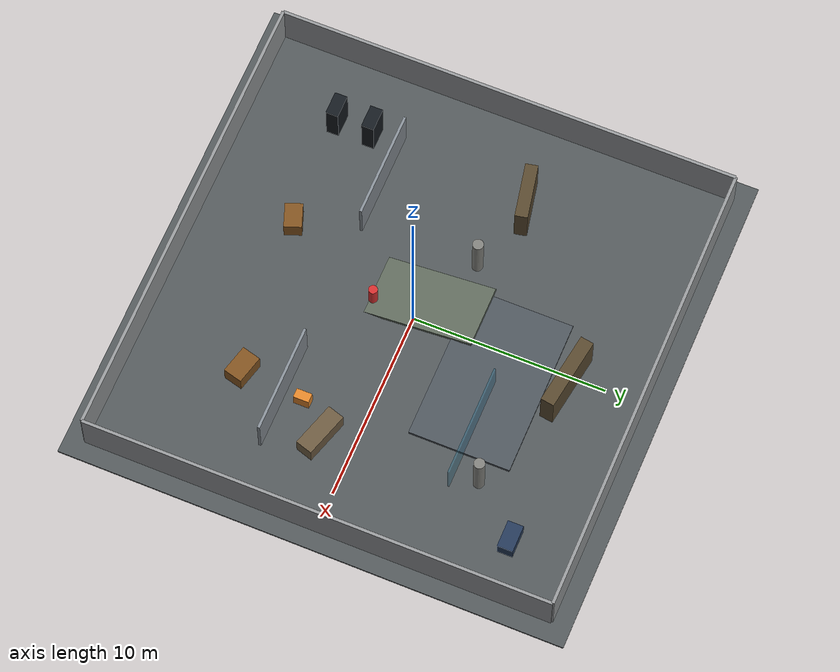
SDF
<?xml version="1.0"?>
<sdf version="1.8">
  <world name="realistic_multilevel_ramp">
    <plugin name="gz::sim::systems::Physics" filename="ignition-gazebo-physics-system"/>
    <plugin name="gz::sim::systems::UserCommands" filename="ignition-gazebo-user-commands-system"/>
    <plugin name="gz::sim::systems::SceneBroadcaster" filename="ignition-gazebo-scene-broadcaster-system"/>
    <plugin name="gz::sim::systems::Sensors" filename="ignition-gazebo-sensors-system">
      <render_engine>ogre2</render_engine>
    </plugin>
    <plugin name="gz::sim::systems::Imu" filename="ignition-gazebo-imu-system"/>

    <physics name="fast_visual_physics" type="ignored">
      <max_step_size>0.01</max_step_size>
      <real_time_update_rate>100</real_time_update_rate>
      <real_time_factor>1.0</real_time_factor>
    </physics>
    <gravity>0 0 -9.8</gravity>
    <magnetic_field>6.0e-06 2.3e-05 -4.2e-05</magnetic_field>
    <scene>
      <ambient>0.68 0.68 0.70 1</ambient>
      <background>0.13 0.15 0.17 1</background>
      <shadows>false</shadows>
    </scene>

    <gui fullscreen="0">
      <camera name="user_camera">
        <pose>-5.8 -8.6 4.0 0 0.52 0.78</pose>
        <projection_type>perspective</projection_type>
      </camera>
    </gui>

    <light name="sun" type="directional">
      <cast_shadows>false</cast_shadows>
      <pose>0 0 14 0 0 0</pose>
      <diffuse>0.95 0.95 0.95 1</diffuse>
      <specular>0.15 0.15 0.15 1</specular>
      <attenuation>
        <range>1000</range>
        <constant>0.9</constant>
        <linear>0.01</linear>
        <quadratic>0.001</quadratic>
      </attenuation>
      <direction>-0.30 0.35 -1</direction>
    </light>

    <model name="floor">
      <static>true</static>
      <link name="link">
        <collision name="collision">
          <geometry><box><size>26 26 0.10</size></box></geometry>
          <pose>0 0 -0.05 0 0 0</pose>
        </collision>
        <visual name="visual">
          <geometry><box><size>26 26 0.10</size></box></geometry>
          <pose>0 0 -0.05 0 0 0</pose>
          <material>
            <ambient>0.32 0.34 0.35 1</ambient>
            <diffuse>0.32 0.34 0.35 1</diffuse>
          </material>
        </visual>
      </link>
    </model>

    <model name="mezzanine_deck_visual">
      <static>true</static>
      <pose>1.8 4.8 0.58 0 0 0</pose>
      <link name="link">
        <collision name="collision"><geometry><box><size>8.2 5.2 0.16</size></box></geometry></collision>
        <visual name="visual"><geometry><box><size>8.2 5.2 0.16</size></box></geometry><material><ambient>0.30 0.33 0.36 1</ambient><diffuse>0.30 0.33 0.36 1</diffuse></material></visual>
      </link>
    </model>

    <model name="wide_access_ramp">
      <static>true</static>
      <pose>-1.0 0.0 0.30 0.16 0 0.0</pose>
      <link name="link">
        <collision name="collision"><geometry><box><size>3.2 6.6 0.16</size></box></geometry></collision>
        <visual name="visual"><geometry><box><size>3.2 6.6 0.16</size></box></geometry><material><ambient>0.36 0.40 0.35 1</ambient><diffuse>0.36 0.40 0.35 1</diffuse></material></visual>
      </link>
    </model>

    <model name="north_wall">
      <static>true</static>
      <pose>0 12.0 1.2 0 0 0</pose>
      <link name="link">
        <collision name="collision"><geometry><box><size>24.0 0.16 2.4</size></box></geometry></collision>
        <visual name="visual"><geometry><box><size>24.0 0.16 2.4</size></box></geometry><material><ambient>0.58 0.59 0.60 1</ambient><diffuse>0.58 0.59 0.60 1</diffuse></material></visual>
      </link>
    </model>
    <model name="south_wall">
      <static>true</static>
      <pose>0 -12.0 1.2 0 0 0</pose>
      <link name="link">
        <collision name="collision"><geometry><box><size>24.0 0.16 2.4</size></box></geometry></collision>
        <visual name="visual"><geometry><box><size>24.0 0.16 2.4</size></box></geometry><material><ambient>0.58 0.59 0.60 1</ambient><diffuse>0.58 0.59 0.60 1</diffuse></material></visual>
      </link>
    </model>
    <model name="west_wall">
      <static>true</static>
      <pose>-12.0 0 1.2 0 0 0</pose>
      <link name="link">
        <collision name="collision"><geometry><box><size>0.16 24.0 2.4</size></box></geometry></collision>
        <visual name="visual"><geometry><box><size>0.16 24.0 2.4</size></box></geometry><material><ambient>0.58 0.59 0.60 1</ambient><diffuse>0.58 0.59 0.60 1</diffuse></material></visual>
      </link>
    </model>
    <model name="east_wall">
      <static>true</static>
      <pose>12.0 0 1.2 0 0 0</pose>
      <link name="link">
        <collision name="collision"><geometry><box><size>0.16 24.0 2.4</size></box></geometry></collision>
        <visual name="visual"><geometry><box><size>0.16 24.0 2.4</size></box></geometry><material><ambient>0.58 0.59 0.60 1</ambient><diffuse>0.58 0.59 0.60 1</diffuse></material></visual>
      </link>
    </model>

    <model name="lab_partition_south_left">
      <static>true</static>
      <pose>-6.2 -4.2 1.05 0 0 0</pose>
      <link name="link">
        <collision name="collision"><geometry><box><size>5.6 0.14 2.1</size></box></geometry></collision>
        <visual name="visual"><geometry><box><size>5.6 0.14 2.1</size></box></geometry><material><ambient>0.52 0.55 0.58 1</ambient><diffuse>0.52 0.55 0.58 1</diffuse></material></visual>
      </link>
    </model>
    <model name="lab_partition_south_right">
      <static>true</static>
      <pose>6.2 -4.2 1.05 0 0 0</pose>
      <link name="link">
        <collision name="collision"><geometry><box><size>5.6 0.14 2.1</size></box></geometry></collision>
        <visual name="visual"><geometry><box><size>5.6 0.14 2.1</size></box></geometry><material><ambient>0.52 0.55 0.58 1</ambient><diffuse>0.52 0.55 0.58 1</diffuse></material></visual>
      </link>
    </model>
    <model name="upper_lab_glass_partition">
      <static>true</static>
      <pose>4.8 5.0 1.35 0 0 1.5708</pose>
      <link name="link">
        <collision name="collision"><geometry><box><size>0.10 5.8 1.7</size></box></geometry></collision>
        <visual name="visual"><geometry><box><size>0.10 5.8 1.7</size></box></geometry><material><ambient>0.18 0.44 0.55 0.45</ambient><diffuse>0.18 0.44 0.55 0.45</diffuse></material></visual>
      </link>
    </model>

    <model name="server_rack_a">
      <static>true</static>
      <pose>-8.4 -7.6 1.0 0 0 0.0</pose>
      <link name="link">
        <collision name="collision"><geometry><box><size>1.2 0.65 2.0</size></box></geometry></collision>
        <visual name="visual"><geometry><box><size>1.2 0.65 2.0</size></box></geometry><material><ambient>0.08 0.10 0.12 1</ambient><diffuse>0.08 0.10 0.12 1</diffuse></material></visual>
      </link>
    </model>
    <model name="server_rack_b">
      <static>true</static>
      <pose>-8.4 -5.7 1.0 0 0 0.0</pose>
      <link name="link">
        <collision name="collision"><geometry><box><size>1.2 0.65 2.0</size></box></geometry></collision>
        <visual name="visual"><geometry><box><size>1.2 0.65 2.0</size></box></geometry><material><ambient>0.08 0.10 0.12 1</ambient><diffuse>0.08 0.10 0.12 1</diffuse></material></visual>
      </link>
    </model>
    <model name="storage_shelf_west">
      <static>true</static>
      <pose>-7.6 2.8 1.0 0 0 0.2</pose>
      <link name="link">
        <collision name="collision"><geometry><box><size>2.9 0.65 2.0</size></box></geometry></collision>
        <visual name="visual"><geometry><box><size>2.9 0.65 2.0</size></box></geometry><material><ambient>0.34 0.28 0.18 1</ambient><diffuse>0.34 0.28 0.18 1</diffuse></material></visual>
      </link>
    </model>
    <model name="storage_shelf_north">
      <static>true</static>
      <pose>0.6 8.2 1.0 0 0 -0.15</pose>
      <link name="link">
        <collision name="collision"><geometry><box><size>3.8 0.70 2.0</size></box></geometry></collision>
        <visual name="visual"><geometry><box><size>3.8 0.70 2.0</size></box></geometry><material><ambient>0.34 0.28 0.18 1</ambient><diffuse>0.34 0.28 0.18 1</diffuse></material></visual>
      </link>
    </model>
    <model name="workbench_east">
      <static>true</static>
      <pose>7.5 -1.7 0.45 0 0 -0.3</pose>
      <link name="link">
        <collision name="collision"><geometry><box><size>2.4 0.9 0.9</size></box></geometry></collision>
        <visual name="visual"><geometry><box><size>2.4 0.9 0.9</size></box></geometry><material><ambient>0.42 0.35 0.25 1</ambient><diffuse>0.42 0.35 0.25 1</diffuse></material></visual>
      </link>
    </model>

    <model name="round_column_a">
      <static>true</static>
      <pose>-3.8 1.8 1.2 0 0 0</pose>
      <link name="link">
        <collision name="collision"><geometry><cylinder><radius>0.28</radius><length>2.4</length></cylinder></geometry></collision>
        <visual name="visual"><geometry><cylinder><radius>0.28</radius><length>2.4</length></cylinder></geometry><material><ambient>0.50 0.50 0.48 1</ambient><diffuse>0.50 0.50 0.48 1</diffuse></material></visual>
      </link>
    </model>
    <model name="round_column_b">
      <static>true</static>
      <pose>6.8 6.2 1.2 0 0 0</pose>
      <link name="link">
        <collision name="collision"><geometry><cylinder><radius>0.28</radius><length>2.4</length></cylinder></geometry></collision>
        <visual name="visual"><geometry><cylinder><radius>0.28</radius><length>2.4</length></cylinder></geometry><material><ambient>0.50 0.50 0.48 1</ambient><diffuse>0.50 0.50 0.48 1</diffuse></material></visual>
      </link>
    </model>
    <model name="shipping_crate_a">
      <static>true</static>
      <pose>-2.5 -7.4 0.45 0 0 0.35</pose>
      <link name="link">
        <collision name="collision"><geometry><box><size>1.3 0.9 0.9</size></box></geometry></collision>
        <visual name="visual"><geometry><box><size>1.3 0.9 0.9</size></box></geometry><material><ambient>0.50 0.32 0.12 1</ambient><diffuse>0.50 0.32 0.12 1</diffuse></material></visual>
      </link>
    </model>
    <model name="shipping_crate_b">
      <static>true</static>
      <pose>5.8 -6.5 0.45 0 0 -0.25</pose>
      <link name="link">
        <collision name="collision"><geometry><box><size>1.5 1.0 0.9</size></box></geometry></collision>
        <visual name="visual"><geometry><box><size>1.5 1.0 0.9</size></box></geometry><material><ambient>0.50 0.32 0.12 1</ambient><diffuse>0.50 0.32 0.12 1</diffuse></material></visual>
      </link>
    </model>
    <model name="charging_dock">
      <static>true</static>
      <pose>9.0 8.7 0.35 0 0 0</pose>
      <link name="link">
        <collision name="collision"><geometry><box><size>1.4 0.8 0.7</size></box></geometry></collision>
        <visual name="visual"><geometry><box><size>1.4 0.8 0.7</size></box></geometry><material><ambient>0.14 0.22 0.34 1</ambient><diffuse>0.14 0.22 0.34 1</diffuse></material></visual>
      </link>
    </model>

    <model name="moving_pedestrian">
      <static>false</static>
      <pose>-0.2 -2.2 0.55 0 0 0</pose>
      <link name="body">
        <inertial><mass>45</mass></inertial>
        <collision name="collision"><geometry><cylinder><radius>0.23</radius><length>1.10</length></cylinder></geometry></collision>
        <visual name="visual"><geometry><cylinder><radius>0.23</radius><length>1.10</length></cylinder></geometry><material><ambient>0.82 0.18 0.18 1</ambient><diffuse>0.82 0.18 0.18 1</diffuse></material></visual>
      </link>
      <plugin filename="ignition-gazebo-velocity-control-system" name="gz::sim::systems::VelocityControl">
        <topic>cmd_vel</topic>
      </plugin>
    </model>

    <model name="inspection_cart_dynamic">
      <static>false</static>
      <pose>6.1 -3.2 0.35 0 0 1.5708</pose>
      <link name="body">
        <inertial><mass>14</mass></inertial>
        <collision name="collision"><geometry><box><size>0.80 0.48 0.70</size></box></geometry></collision>
        <visual name="visual"><geometry><box><size>0.80 0.48 0.70</size></box></geometry><material><ambient>0.88 0.52 0.16 1</ambient><diffuse>0.88 0.52 0.16 1</diffuse></material></visual>
      </link>
      <plugin filename="ignition-gazebo-velocity-control-system" name="gz::sim::systems::VelocityControl">
        <topic>cmd_vel</topic>
      </plugin>
    </model>

    <plugin filename="ignition-gazebo-triggered-publisher-system" name="gz::sim::systems::TriggeredPublisher">
      <input type="ignition.msgs.Empty" topic="/airos/realistic_multilevel_ramp/start_dynamic_obstacles"/>
      <output type="ignition.msgs.Twist" topic="/model/moving_pedestrian/cmd_vel">
        linear: {y: 0.26}
      </output>
    </plugin>
    <plugin filename="ignition-gazebo-triggered-publisher-system" name="gz::sim::systems::TriggeredPublisher">
      <input type="ignition.msgs.Empty" topic="/airos/realistic_multilevel_ramp/start_dynamic_obstacles"/>
      <output type="ignition.msgs.Twist" topic="/model/inspection_cart_dynamic/cmd_vel">
        linear: {x: 0.22}
      </output>
    </plugin>
  </world>
</sdf>
